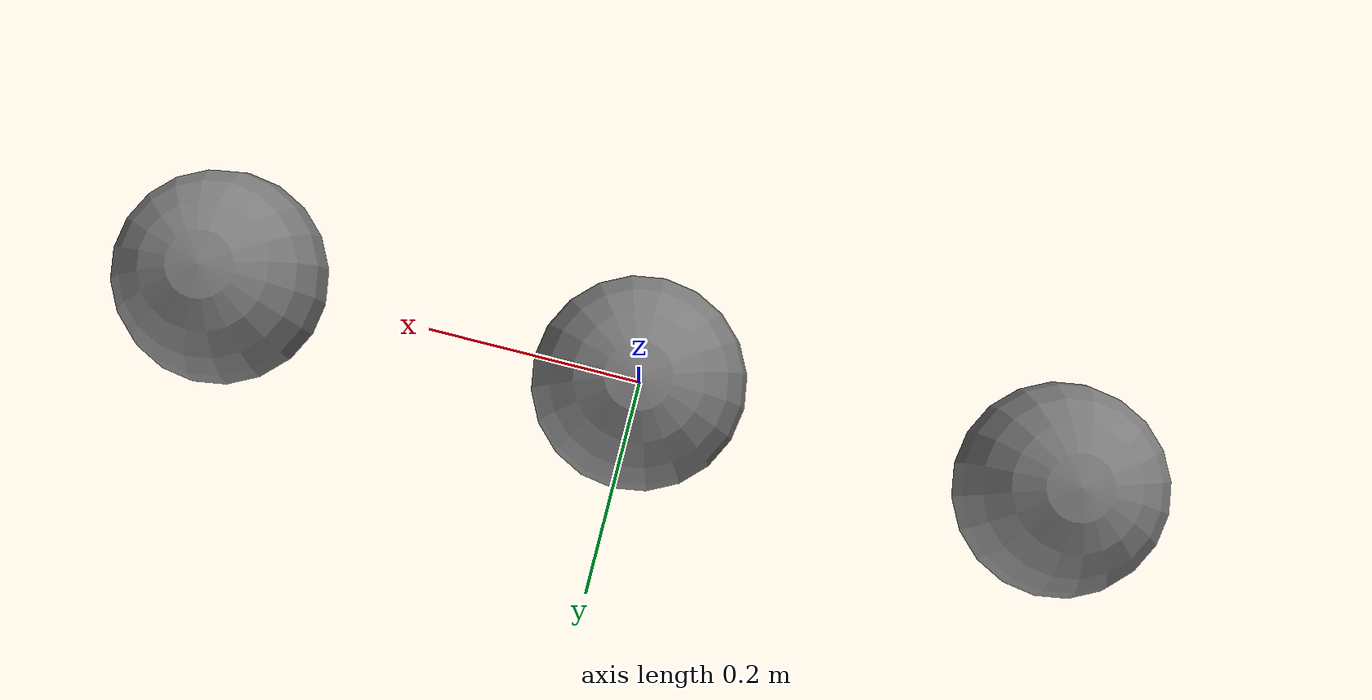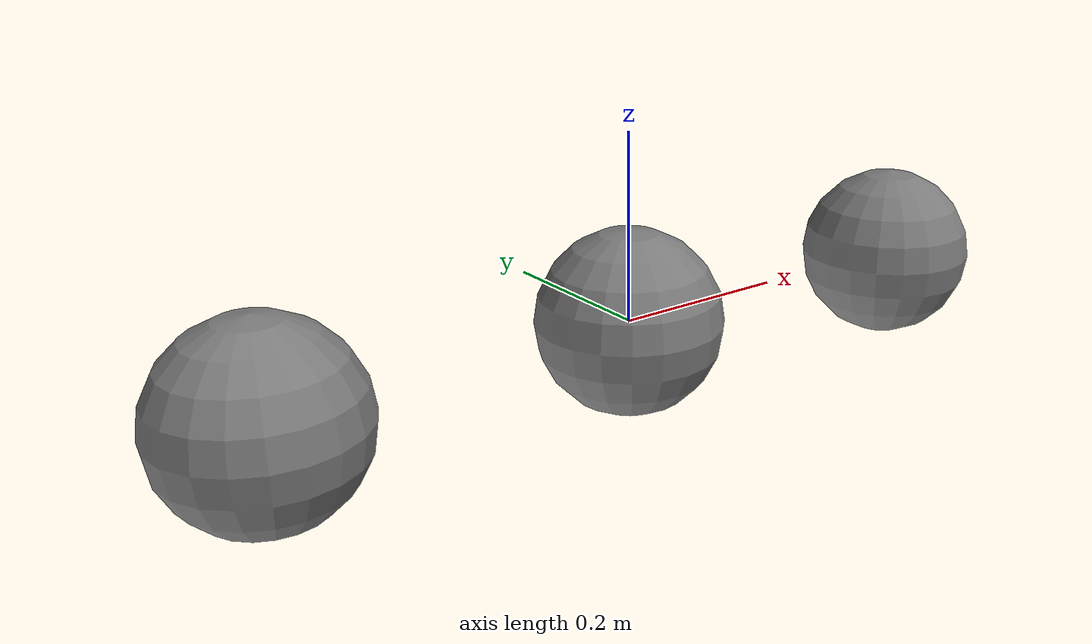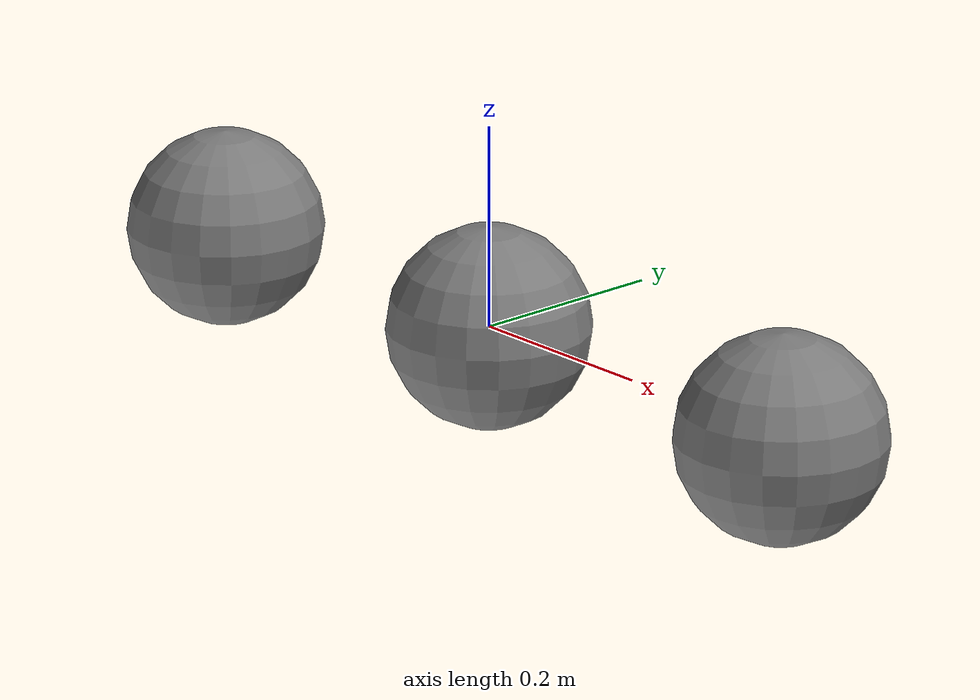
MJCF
<mujoco model="collision-mask-flattening">
  <worldbody>
    <body name="selective_a_body" pos="-0.4 0 0">
      <geom name="selective_a" type="sphere" size="0.1" mass="1" contype="1" conaffinity="1"/>
    </body>
    <body name="selective_b_body" pos="0 0 0">
      <geom name="selective_b" type="sphere" size="0.1" mass="1" contype="1" conaffinity="1"/>
    </body>
    <body name="isolated_c_body" pos="0.4 0 0">
      <geom name="isolated_c" type="sphere" size="0.1" mass="1" contype="1" conaffinity="1"/>
    </body>
  </worldbody>
</mujoco>
